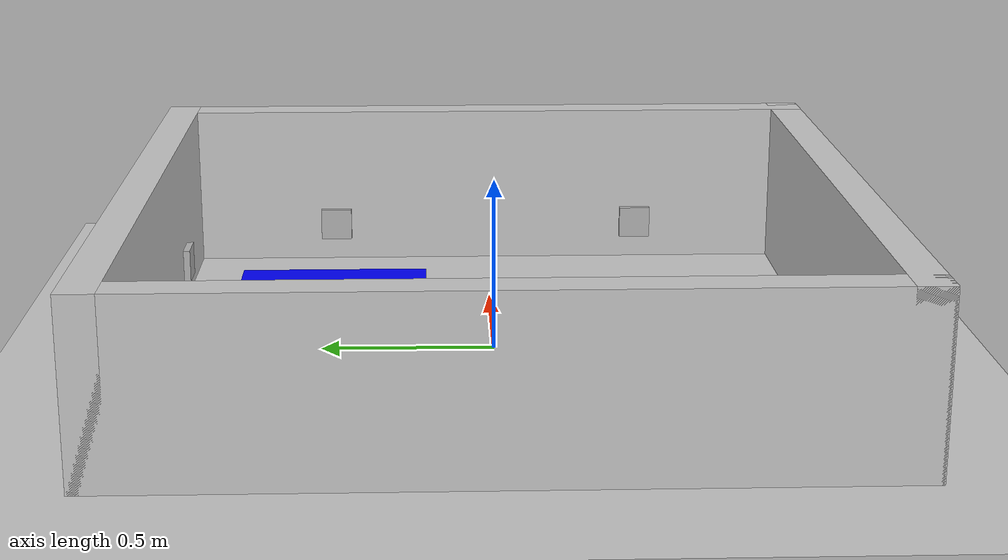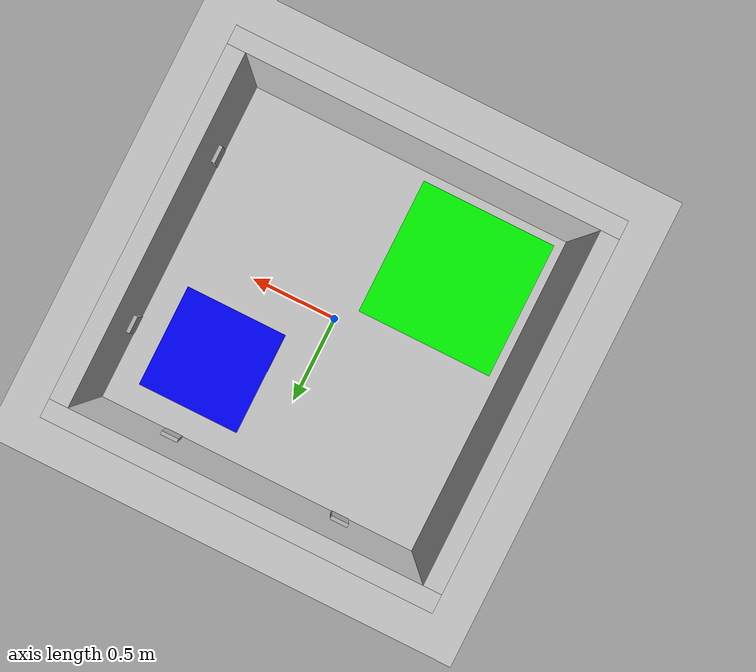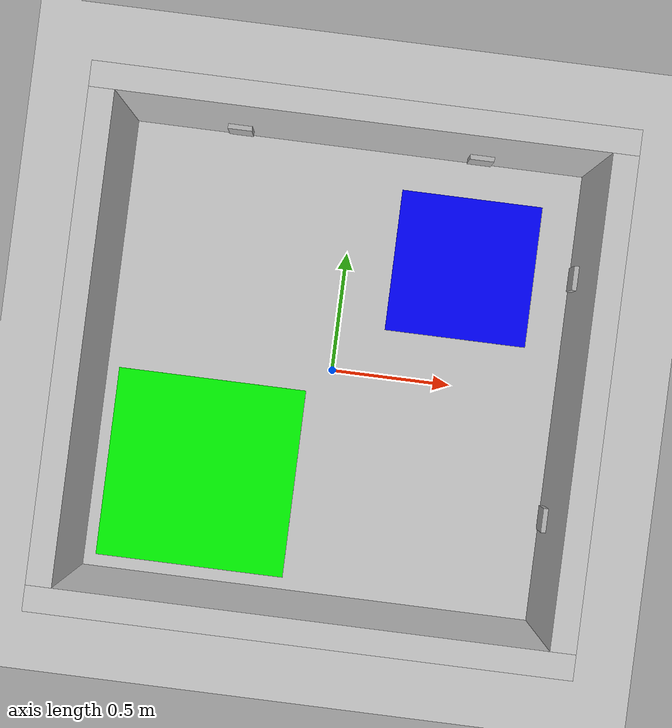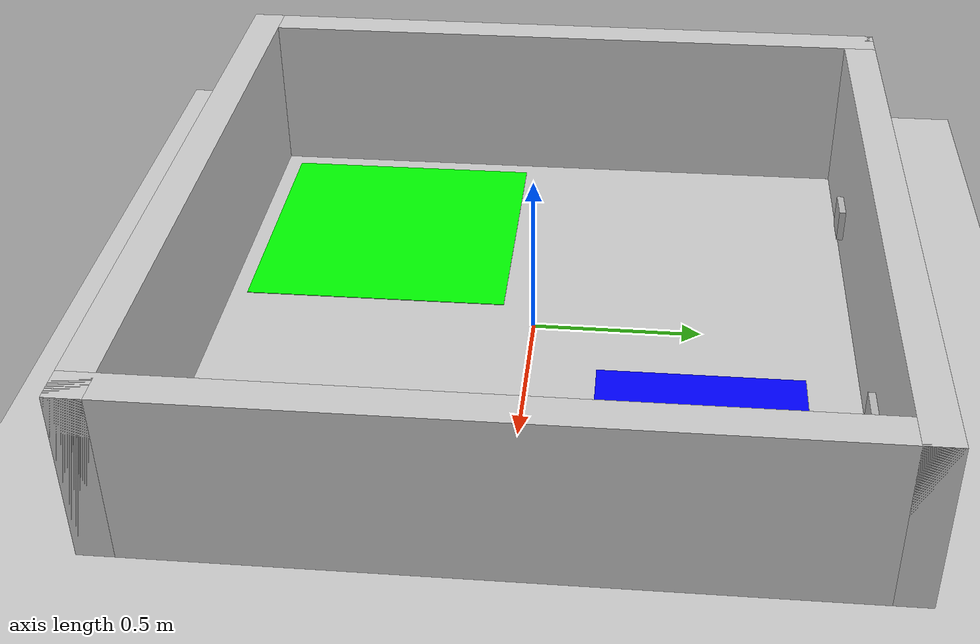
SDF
<?xml version="1.0" ?>
<sdf version="1.6">
  <world name="delivery_apartment">

    <include><uri>model://sun</uri></include>
    <include><uri>model://ground_plane</uri></include>

    <model name="walls">
      <static>true</static>
      <link name="north_wall">
        <pose>0 1.0 0.25 0 0 0</pose>
        <collision name="collision"><geometry><box><size>2.1 0.1 0.5</size></box></geometry></collision>
        <visual name="visual"><geometry><box><size>2.1 0.1 0.5</size></box></geometry>
          <material><ambient>0.8 0.8 0.8 1</ambient></material>
        </visual>
      </link>
      <link name="south_wall">
        <pose>0 -1.0 0.25 0 0 0</pose>
        <collision name="collision"><geometry><box><size>2.1 0.1 0.5</size></box></geometry></collision>
        <visual name="visual"><geometry><box><size>2.1 0.1 0.5</size></box></geometry>
          <material><ambient>0.8 0.8 0.8 1</ambient></material>
        </visual>
      </link>
      <link name="east_wall">
        <pose>1.0 0 0.25 0 0 0</pose>
        <collision name="collision"><geometry><box><size>0.1 2.1 0.5</size></box></geometry></collision>
        <visual name="visual"><geometry><box><size>0.1 2.1 0.5</size></box></geometry>
          <material><ambient>0.8 0.8 0.8 1</ambient></material>
        </visual>
      </link>
      <link name="west_wall">
        <pose>-1.0 0 0.25 0 0 0</pose>
        <collision name="collision"><geometry><box><size>0.1 2.1 0.5</size></box></geometry></collision>
        <visual name="visual"><geometry><box><size>0.1 2.1 0.5</size></box></geometry>
          <material><ambient>0.8 0.8 0.8 1</ambient></material>
        </visual>
      </link>
    </model>

    <model name="resting_area">
      <static>true</static>
      <pose>-0.5 -0.5 0.001 0 0 0</pose>
      <link name="link">
        <visual name="visual">
          <geometry><box><size>0.8 0.8 0.002</size></box></geometry>
          <material><ambient>0.0 1.0 0.0 1</ambient></material>
        </visual>
      </link>
    </model>

    <model name="delivery_zone">
      <static>true</static>
      <pose>0.5 0.5 0.001 0 0 0</pose>
      <link name="link">
        <visual name="visual">
          <geometry><box><size>0.6 0.6 0.002</size></box></geometry>
          <material><ambient>0.0 0.0 1.0 1</ambient></material>
        </visual>
      </link>
    </model>

    <model name="product_targets">
      <static>true</static>

      <link name="target_wheels">
        <pose>0.5 0.94 0.12 0 0 0</pose>
        <visual name="visual">
          <geometry><box><size>0.1 0.02 0.1</size></box></geometry>
          <material>
            <script>
              <uri>model://delivery_core/materials/scripts</uri>
              <uri>model://delivery_core/materials/textures</uri>
              <name>QR/Wheels</name>
            </script>
          </material>
        </visual>
      </link>

      <link name="target_shampoo">
        <pose>-0.5 0.94 0.12 0 0 0</pose>
        <visual name="visual">
          <geometry><box><size>0.1 0.02 0.1</size></box></geometry>
          <material>
            <script>
              <uri>model://delivery_core/materials/scripts</uri>
              <uri>model://delivery_core/materials/textures</uri>
              <name>QR/Shampoo</name>
            </script>
          </material>
        </visual>
      </link>

      <link name="target_engine">
        <pose>0.94 0.5 0.12 0 0 0</pose>
        <visual name="visual">
          <geometry><box><size>0.02 0.1 0.1</size></box></geometry>
          <material>
            <script>
              <uri>model://delivery_core/materials/scripts</uri>
              <uri>model://delivery_core/materials/textures</uri>
              <name>QR/Engine</name>
            </script>
          </material>
        </visual>
      </link>

      <link name="target_laptop">
        <pose>0.94 -0.5 0.12 0 0 0</pose>
        <visual name="visual">
          <geometry><box><size>0.02 0.1 0.1</size></box></geometry>
          <material>
            <script>
              <uri>model://delivery_core/materials/scripts</uri>
              <uri>model://delivery_core/materials/textures</uri>
              <name>QR/Laptop</name>
            </script>
          </material>
        </visual>
      </link>

    </model>
  </world>
</sdf>
